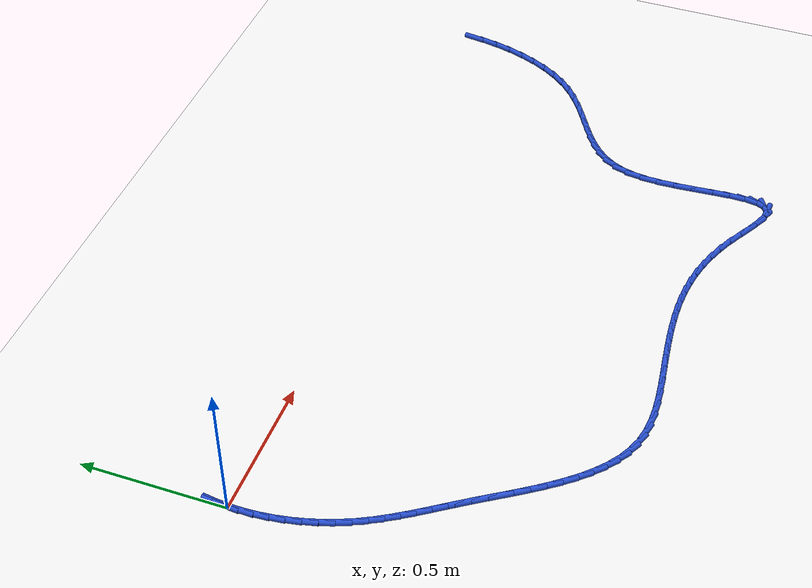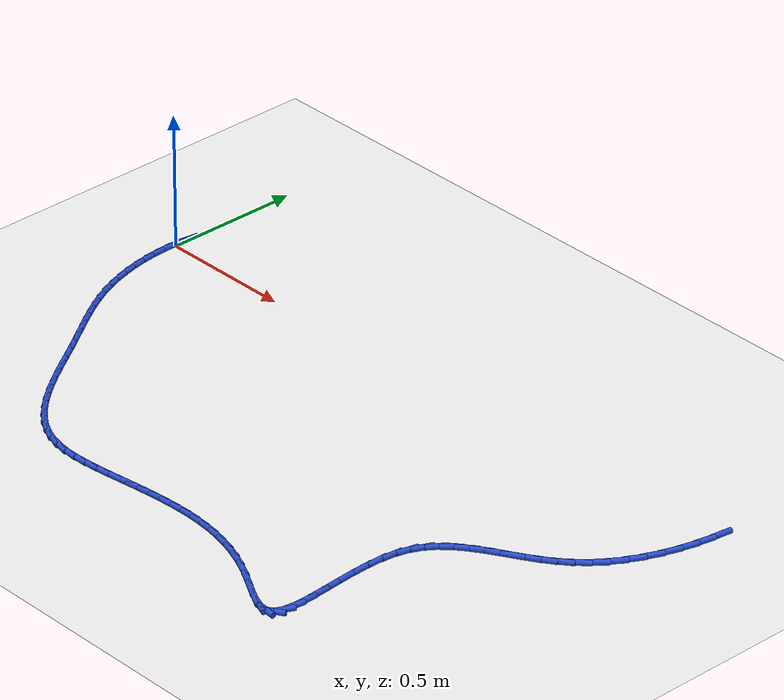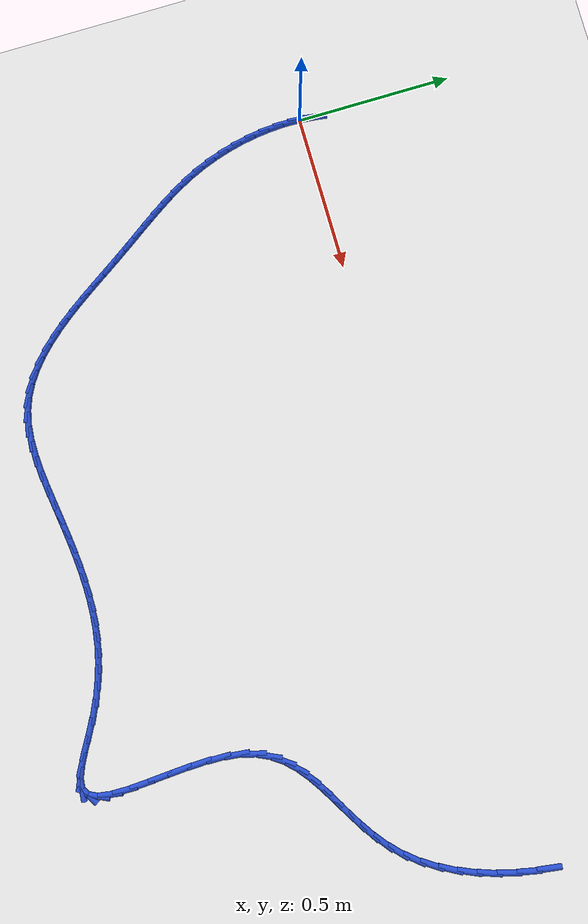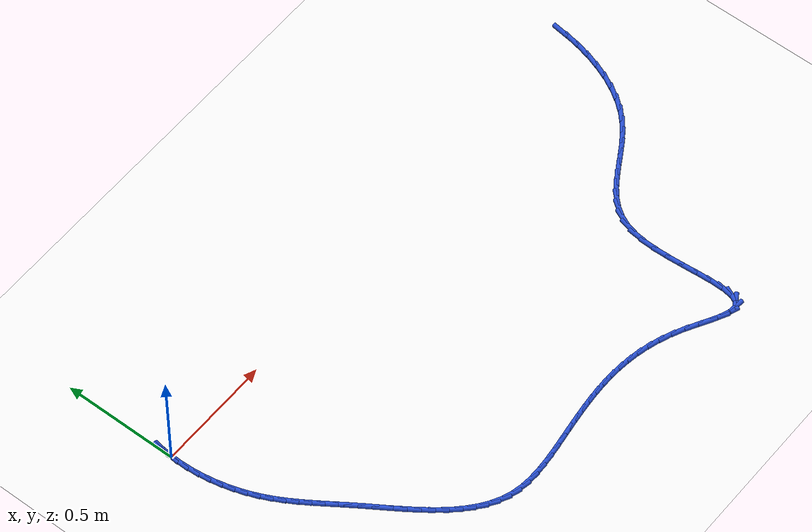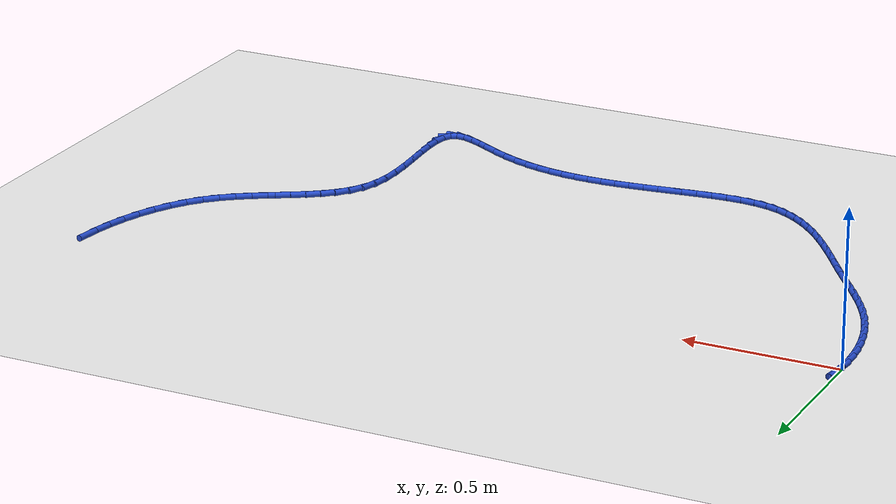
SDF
<sdf version="1.6">
 <world name="default">
  <model name="ground_plane">
   <static>1</static>
   <link name="link">
    <collision name="collision">
     <geometry><plane><normal>0 0 1</normal><size>100 100</size></plane></geometry>
     <surface><friction><ode><mu>100</mu><mu2>50</mu2></ode></friction></surface>
    </collision>
    <visual name="visual">
     <cast_shadows>0</cast_shadows>
     <geometry><plane><normal>0 0 1</normal><size>100 100</size></plane></geometry>
     <material>
      <script><uri>file://media/materials/scripts/gazebo.material</uri><name>Gazebo/WhiteGlow</name></script>
     </material>
    </visual>
   </link>
  </model>
  <model name="line">
   <link name="link_0">
    <pose>1.734723475976807e-18 -6.938893903907228e-18 0.01 0 1.57 1.4833521786747628</pose>
    <collision name="collision">
     <geometry><cylinder><radius>0.01</radius><length>0.08</length></cylinder></geometry>
    </collision>
    <visual name="visual">
     <material>
      <script><name>Gazebo/Blue</name><uri>file://media/materials/scripts/gazebo.material</uri></script>
     </material>
     <geometry><cylinder><radius>0.01</radius><length>0.08</length></cylinder></geometry>
    </visual>
   </link>
   <link name="link_1">
    <pose>0.004138113100959546 0.04720224826261963 0.01 0 1.57 1.4253230461346753</pose>
    <collision name="collision">
     <geometry><cylinder><radius>0.01</radius><length>0.08</length></cylinder></geometry>
    </collision>
    <visual name="visual">
     <material>
      <script><name>Gazebo/Blue</name><uri>file://media/materials/scripts/gazebo.material</uri></script>
     </material>
     <geometry><cylinder><radius>0.01</radius><length>0.08</length></cylinder></geometry>
    </visual>
   </link>
   <link name="link_88">
    <pose>2.495821239260874 0.07475999893013513 0.01 0 1.57 1.4299672112458717</pose>
    <collision name="collision">
     <geometry><cylinder><radius>0.01</radius><length>0.08</length></cylinder></geometry>
    </collision>
    <visual name="visual">
     <material>
      <script><name>Gazebo/Blue</name><uri>file://media/materials/scripts/gazebo.material</uri></script>
     </material>
     <geometry><cylinder><radius>0.01</radius><length>0.08</length></cylinder></geometry>
    </visual>
   </link>
   <link name="link_89">
    <pose>2.4870882066946534 0.013158941213818366 0.01 0 1.57 1.3635583925396904</pose>
    <collision name="collision">
     <geometry><cylinder><radius>0.01</radius><length>0.08</length></cylinder></geometry>
    </collision>
    <visual name="visual">
     <material>
      <script><name>Gazebo/Blue</name><uri>file://media/materials/scripts/gazebo.material</uri></script>
     </material>
     <geometry><cylinder><radius>0.01</radius><length>0.08</length></cylinder></geometry>
    </visual>
   </link>
   <link name="link_90">
    <pose>2.4742563139695792 -0.04787074018446901 0.01 0 1.57 1.2955035792887912</pose>
    <collision name="collision">
     <geometry><cylinder><radius>0.01</radius><length>0.08</length></cylinder></geometry>
    </collision>
    <visual name="visual">
     <material>
      <script><name>Gazebo/Blue</name><uri>file://media/materials/scripts/gazebo.material</uri></script>
     </material>
     <geometry><cylinder><radius>0.01</radius><length>0.08</length></cylinder></geometry>
    </visual>
   </link>
   <link name="link_91">
    <pose>2.457389563642091 -0.10758351379263104 0.01 0 1.57 1.2239593561271442</pose>
    <collision name="collision">
     <geometry><cylinder><radius>0.01</radius><length>0.08</length></cylinder></geometry>
    </collision>
    <visual name="visual">
     <material>
      <script><name>Gazebo/Blue</name><uri>file://media/materials/scripts/gazebo.material</uri></script>
     </material>
     <geometry><cylinder><radius>0.01</radius><length>0.08</length></cylinder></geometry>
    </visual>
   </link>
   <link name="link_92">
    <pose>2.4365519582686326 -0.1652338481385704 0.01 0 1.57 1.1469512393487458</pose>
    <collision name="collision">
     <geometry><cylinder><radius>0.01</radius><length>0.08</length></cylinder></geometry>
    </collision>
    <visual name="visual">
     <material>
      <script><name>Gazebo/Blue</name><uri>file://media/materials/scripts/gazebo.material</uri></script>
     </material>
     <geometry><cylinder><radius>0.01</radius><length>0.08</length></cylinder></geometry>
    </visual>
   </link>
   <link name="link_93">
    <pose>2.411807500405645 -0.22007621175018988 0.01 0 1.57 1.0623059082910338</pose>
    <collision name="collision">
     <geometry><cylinder><radius>0.01</radius><length>0.08</length></cylinder></geometry>
    </collision>
    <visual name="visual">
     <material>
      <script><name>Gazebo/Blue</name><uri>file://media/materials/scripts/gazebo.material</uri></script>
     </material>
     <geometry><cylinder><radius>0.01</radius><length>0.08</length></cylinder></geometry>
    </visual>
   </link>
   <link name="link_94">
    <pose>2.383220192609569 -0.271365073155393 0.01 0 1.57 0.9676330819131115</pose>
    <collision name="collision">
     <geometry><cylinder><radius>0.01</radius><length>0.08</length></cylinder></geometry>
    </collision>
    <visual name="visual">
     <material>
      <script><name>Gazebo/Blue</name><uri>file://media/materials/scripts/gazebo.material</uri></script>
     </material>
     <geometry><cylinder><radius>0.01</radius><length>0.08</length></cylinder></geometry>
    </visual>
   </link>
   <link name="link_95">
    <pose>2.350854037436848 -0.31835490088208074 0.01 0 1.57 0.860414689295662</pose>
    <collision name="collision">
     <geometry><cylinder><radius>0.01</radius><length>0.08</length></cylinder></geometry>
    </collision>
    <visual name="visual">
     <material>
      <script><name>Gazebo/Blue</name><uri>file://media/materials/scripts/gazebo.material</uri></script>
     </material>
     <geometry><cylinder><radius>0.01</radius><length>0.08</length></cylinder></geometry>
    </visual>
   </link>
   <link name="link_96">
    <pose>2.314773037792205 -0.36030016417041155 0.01 0 1.57 0.744965603380325</pose>
    <collision name="collision">
     <geometry><cylinder><radius>0.01</radius><length>0.08</length></cylinder></geometry>
    </collision>
    <visual name="visual">
     <material>
      <script><name>Gazebo/Blue</name><uri>file://media/materials/scripts/gazebo.material</uri></script>
     </material>
     <geometry><cylinder><radius>0.01</radius><length>0.08</length></cylinder></geometry>
    </visual>
   </link>
   <link name="link_97">
    <pose>2.2752053171679005 -0.3967909670873308 0.01 0 1.57 0.6476040961380963</pose>
    <collision name="collision">
     <geometry><cylinder><radius>0.01</radius><length>0.08</length></cylinder></geometry>
    </collision>
    <visual name="visual">
     <material>
      <script><name>Gazebo/Blue</name><uri>file://media/materials/scripts/gazebo.material</uri></script>
     </material>
     <geometry><cylinder><radius>0.01</radius><length>0.08</length></cylinder></geometry>
    </visual>
   </link>
   <link name="link_98">
    <pose>2.233010342654311 -0.42870854299915423 0.01 0 1.57 0.5773192533011722</pose>
    <collision name="collision">
     <geometry><cylinder><radius>0.01</radius><length>0.08</length></cylinder></geometry>
    </collision>
    <visual name="visual">
     <material>
      <script><name>Gazebo/Blue</name><uri>file://media/materials/scripts/gazebo.material</uri></script>
     </material>
     <geometry><cylinder><radius>0.01</radius><length>0.08</length></cylinder></geometry>
    </visual>
   </link>
   <link name="link_99">
    <pose>2.1891993714259845 -0.45724454360163796 0.01 0 1.57 0.5353824694238893</pose>
    <collision name="collision">
     <geometry><cylinder><radius>0.01</radius><length>0.08</length></cylinder></geometry>
    </collision>
    <visual name="visual">
     <material>
      <script><name>Gazebo/Blue</name><uri>file://media/materials/scripts/gazebo.material</uri></script>
     </material>
     <geometry><cylinder><radius>0.01</radius><length>0.08</length></cylinder></geometry>
    </visual>
   </link>
   <link name="link_100">
    <pose>2.1447836606574744 -0.48359062059053615 0.01 0 1.57 0.522560056136733</pose>
    <collision name="collision">
     <geometry><cylinder><radius>0.01</radius><length>0.08</length></cylinder></geometry>
    </collision>
    <visual name="visual">
     <material>
      <script><name>Gazebo/Blue</name><uri>file://media/materials/scripts/gazebo.material</uri></script>
     </material>
     <geometry><cylinder><radius>0.01</radius><length>0.08</length></cylinder></geometry>
    </visual>
   </link>
   <link name="link_101">
    <pose>2.100774467523328 -0.5089384256616047 0.01 0 1.57 0.5401835358497639</pose>
    <collision name="collision">
     <geometry><cylinder><radius>0.01</radius><length>0.08</length></cylinder></geometry>
    </collision>
    <visual name="visual">
     <material>
      <script><name>Gazebo/Blue</name><uri>file://media/materials/scripts/gazebo.material</uri></script>
     </material>
     <geometry><cylinder><radius>0.01</radius><length>0.08</length></cylinder></geometry>
    </visual>
   </link>
   <link name="link_102">
    <pose>2.058183049198096 -0.5344796105105993 0.01 0 1.57 0.5906060010589071</pose>
    <collision name="collision">
     <geometry><cylinder><radius>0.01</radius><length>0.08</length></cylinder></geometry>
    </collision>
    <visual name="visual">
     <material>
      <script><name>Gazebo/Blue</name><uri>file://media/materials/scripts/gazebo.material</uri></script>
     </material>
     <geometry><cylinder><radius>0.01</radius><length>0.08</length></cylinder></geometry>
    </visual>
   </link>
   <link name="link_103">
    <pose>2.0180206628563284 -0.5614058268332753 0.01 0 1.57 0.6768167445593142</pose>
    <collision name="collision">
     <geometry><cylinder><radius>0.01</radius><length>0.08</length></cylinder></geometry>
    </collision>
    <visual name="visual">
     <material>
      <script><name>Gazebo/Blue</name><uri>file://media/materials/scripts/gazebo.material</uri></script>
     </material>
     <geometry><cylinder><radius>0.01</radius><length>0.08</length></cylinder></geometry>
    </visual>
   </link>
   <link name="link_104">
    <pose>1.9812985656725728 -0.5909087263253883 0.01 0 1.57 0.8006648479722944</pose>
    <collision name="collision">
     <geometry><cylinder><radius>0.01</radius><length>0.08</length></cylinder></geometry>
    </collision>
    <visual name="visual">
     <material>
      <script><name>Gazebo/Blue</name><uri>file://media/materials/scripts/gazebo.material</uri></script>
     </material>
     <geometry><cylinder><radius>0.01</radius><length>0.08</length></cylinder></geometry>
    </visual>
   </link>
   <link name="link_105">
    <pose>1.9490280148213814 -0.6241799606826927 0.01 0 1.57 0.9592651800630944</pose>
    <collision name="collision">
     <geometry><cylinder><radius>0.01</radius><length>0.08</length></cylinder></geometry>
    </collision>
    <visual name="visual">
     <material>
      <script><name>Gazebo/Blue</name><uri>file://media/materials/scripts/gazebo.material</uri></script>
     </material>
     <geometry><cylinder><radius>0.01</radius><length>0.08</length></cylinder></geometry>
    </visual>
   </link>
   <link name="link_106">
    <pose>1.922220267477304 -0.6624111816009446 0.01 0 1.57 1.1411915288482528</pose>
    <collision name="collision">
     <geometry><cylinder><radius>0.01</radius><length>0.08</length></cylinder></geometry>
    </collision>
    <visual name="visual">
     <material>
      <script><name>Gazebo/Blue</name><uri>file://media/materials/scripts/gazebo.material</uri></script>
     </material>
     <geometry><cylinder><radius>0.01</radius><length>0.08</length></cylinder></geometry>
    </visual>
   </link>
   <link name="link_107">
    <pose>1.9018865808148897 -0.7067940407758996 0.01 0 1.57 1.3251898674702867</pose>
    <collision name="collision">
     <geometry><cylinder><radius>0.01</radius><length>0.08</length></cylinder></geometry>
    </collision>
    <visual name="visual">
     <material>
      <script><name>Gazebo/Blue</name><uri>file://media/materials/scripts/gazebo.material</uri></script>
     </material>
     <geometry><cylinder><radius>0.01</radius><length>0.08</length></cylinder></geometry>
    </visual>
   </link>
   <link name="link_108">
    <pose>1.8889490783106362 -0.7584063206875965 0.01 0 1.57 1.4667762088494005</pose>
    <collision name="collision">
     <geometry><cylinder><radius>0.01</radius><length>0.08</length></cylinder></geometry>
    </collision>
    <visual name="visual">
     <material>
      <script><name>Gazebo/Blue</name><uri>file://media/materials/scripts/gazebo.material</uri></script>
     </material>
     <geometry><cylinder><radius>0.01</radius><length>0.08</length></cylinder></geometry>
    </visual>
   </link>
   <link name="link_109">
    <pose>1.8828862089376857 -0.8164814947944673 0.01 0 1.57 1.5566634035106777</pose>
    <collision name="collision">
     <geometry><cylinder><radius>0.01</radius><length>0.08</length></cylinder></geometry>
    </collision>
    <visual name="visual">
     <material>
      <script><name>Gazebo/Blue</name><uri>file://media/materials/scripts/gazebo.material</uri></script>
     </material>
     <geometry><cylinder><radius>0.01</radius><length>0.08</length></cylinder></geometry>
    </visual>
   </link>
   <link name="link_110">
    <pose>1.8820060038661153 -0.8787578157775285 0.01 0 1.57 -1.5306642677155144</pose>
    <collision name="collision">
     <geometry><cylinder><radius>0.01</radius><length>0.08</length></cylinder></geometry>
    </collision>
    <visual name="visual">
     <material>
      <script><name>Gazebo/Blue</name><uri>file://media/materials/scripts/gazebo.material</uri></script>
     </material>
     <geometry><cylinder><radius>0.01</radius><length>0.08</length></cylinder></geometry>
    </visual>
   </link>
   <link name="link_111">
    <pose>1.8845827673173952 -0.9429304497941744 0.01 0 1.57 -1.5033367636868913</pose>
    <collision name="collision">
     <geometry><cylinder><radius>0.01</radius><length>0.08</length></cylinder></geometry>
    </collision>
    <visual name="visual">
     <material>
      <script><name>Gazebo/Blue</name><uri>file://media/materials/scripts/gazebo.material</uri></script>
     </material>
     <geometry><cylinder><radius>0.01</radius><length>0.08</length></cylinder></geometry>
    </visual>
   </link>
   <link name="link_112">
    <pose>1.8888908035129959 -1.0066945630018034 0.01 0 1.57 -1.500257378357856</pose>
    <collision name="collision">
     <geometry><cylinder><radius>0.01</radius><length>0.08</length></cylinder></geometry>
    </collision>
    <visual name="visual">
     <material>
      <script><name>Gazebo/Blue</name><uri>file://media/materials/scripts/gazebo.material</uri></script>
     </material>
     <geometry><cylinder><radius>0.01</radius><length>0.08</length></cylinder></geometry>
    </visual>
   </link>
   <link name="link_113">
    <pose>1.893204416674387 -1.067745321557812 0.01 0 1.57 -1.5245438584699584</pose>
    <collision name="collision">
     <geometry><cylinder><radius>0.01</radius><length>0.08</length></cylinder></geometry>
    </collision>
    <visual name="visual">
     <material>
      <script><name>Gazebo/Blue</name><uri>file://media/materials/scripts/gazebo.material</uri></script>
     </material>
     <geometry><cylinder><radius>0.01</radius><length>0.08</length></cylinder></geometry>
    </visual>
   </link>
   <link name="link_114">
    <pose>1.8957979110230399 -1.1237778916195977 0.01 0 1.57 1.5533001004804743</pose>
    <collision name="collision">
     <geometry><cylinder><radius>0.01</radius><length>0.08</length></cylinder></geometry>
    </collision>
    <visual name="visual">
     <material>
      <script><name>Gazebo/Blue</name><uri>file://media/materials/scripts/gazebo.material</uri></script>
     </material>
     <geometry><cylinder><radius>0.01</radius><length>0.08</length></cylinder></geometry>
    </visual>
   </link>
   <link name="link_115">
    <pose>1.894945590780425 -1.1724874393445588 0.01 0 1.57 1.4178654907097394</pose>
    <collision name="collision">
     <geometry><cylinder><radius>0.01</radius><length>0.08</length></cylinder></geometry>
    </collision>
    <visual name="visual">
     <material>
      <script><name>Gazebo/Blue</name><uri>file://media/materials/scripts/gazebo.material</uri></script>
     </material>
     <geometry><cylinder><radius>0.01</radius><length>0.08</length></cylinder></geometry>
    </visual>
   </link>
   <link name="link_116">
    <pose>1.8889217601680124 -1.21156913089009 0.01 0 1.57 1.1265890930205877</pose>
    <collision name="collision">
     <geometry><cylinder><radius>0.01</radius><length>0.08</length></cylinder></geometry>
    </collision>
    <visual name="visual">
     <material>
      <script><name>Gazebo/Blue</name><uri>file://media/materials/scripts/gazebo.material</uri></script>
     </material>
     <geometry><cylinder><radius>0.01</radius><length>0.08</length></cylinder></geometry>
    </visual>
   </link>
   <link name="link_117">
    <pose>1.8760007234072726 -1.2387181324135894 0.01 0 1.57 0.5399113018068107</pose>
    <collision name="collision">
     <geometry><cylinder><radius>0.01</radius><length>0.08</length></cylinder></geometry>
    </collision>
    <visual name="visual">
     <material>
      <script><name>Gazebo/Blue</name><uri>file://media/materials/scripts/gazebo.material</uri></script>
     </material>
     <geometry><cylinder><radius>0.01</radius><length>0.08</length></cylinder></geometry>
    </visual>
   </link>
   <link name="link_118">
    <pose>1.8544567847196765 -1.2516296100724542 0.01 0 1.57 -0.09654531863326281</pose>
    <collision name="collision">
     <geometry><cylinder><radius>0.01</radius><length>0.08</length></cylinder></geometry>
    </collision>
    <visual name="visual">
     <material>
      <script><name>Gazebo/Blue</name><uri>file://media/materials/scripts/gazebo.material</uri></script>
     </material>
     <geometry><cylinder><radius>0.01</radius><length>0.08</length></cylinder></geometry>
    </visual>
   </link>
   <link name="link_119">
    <pose>1.8229115577545232 -1.2485745681664422 0.01 0 1.57 -0.3848978425719063</pose>
    <collision name="collision">
     <geometry><cylinder><radius>0.01</radius><length>0.08</length></cylinder></geometry>
    </collision>
    <visual name="visual">
     <material>
      <script><name>Gazebo/Blue</name><uri>file://media/materials/scripts/gazebo.material</uri></script>
     </material>
     <geometry><cylinder><radius>0.01</radius><length>0.08</length></cylinder></geometry>
    </visual>
   </link>
   <link name="link_120">
    <pose>1.7826696809703224 -1.232272459261457 0.01 0 1.57 -0.4902870545709526</pose>
    <collision name="collision">
     <geometry><cylinder><radius>0.01</radius><length>0.08</length></cylinder></geometry>
    </collision>
    <visual name="visual">
     <material>
      <script><name>Gazebo/Blue</name><uri>file://media/materials/scripts/gazebo.material</uri></script>
     </material>
     <geometry><cylinder><radius>0.01</radius><length>0.08</length></cylinder></geometry>
    </visual>
   </link>
   <link name="link_121">
    <pose>1.73628535253424 -1.2075145027219547 0.01 0 1.57 -0.5170199239435117</pose>
    <collision name="collision">
     <geometry><cylinder><radius>0.01</radius><length>0.08</length></cylinder></geometry>
    </collision>
    <visual name="visual">
     <material>
      <script><name>Gazebo/Blue</name><uri>file://media/materials/scripts/gazebo.material</uri></script>
     </material>
     <geometry><cylinder><radius>0.01</radius><length>0.08</length></cylinder></geometry>
    </visual>
   </link>
   <link name="link_122">
    <pose>1.6863197455360506 -1.1791034823162247 0.01 0 1.57 -0.4911693146768078</pose>
    <collision name="collision">
     <geometry><cylinder><radius>0.01</radius><length>0.08</length></cylinder></geometry>
    </collision>
    <visual name="visual">
     <material>
      <script><name>Gazebo/Blue</name><uri>file://media/materials/scripts/gazebo.material</uri></script>
     </material>
     <geometry><cylinder><radius>0.01</radius><length>0.08</length></cylinder></geometry>
    </visual>
   </link>
   <link name="link_123">
    <pose>1.6353264422524296 -1.1518276196169273 0.01 0 1.57 -0.4286232499107913</pose>
    <collision name="collision">
     <geometry><cylinder><radius>0.01</radius><length>0.08</length></cylinder></geometry>
    </collision>
    <visual name="visual">
     <material>
      <script><name>Gazebo/Blue</name><uri>file://media/materials/scripts/gazebo.material</uri></script>
     </material>
     <geometry><cylinder><radius>0.01</radius><length>0.08</length></cylinder></geometry>
    </visual>
   </link>
   <link name="link_124">
    <pose>1.585002379552402 -1.1288317499286482 0.01 0 1.57 -0.3606228047868257</pose>
    <collision name="collision">
     <geometry><cylinder><radius>0.01</radius><length>0.08</length></cylinder></geometry>
    </collision>
    <visual name="visual">
     <material>
      <script><name>Gazebo/Blue</name><uri>file://media/materials/scripts/gazebo.material</uri></script>
     </material>
     <geometry><cylinder><radius>0.01</radius><length>0.08</length></cylinder></geometry>
    </visual>
   </link>
   <link name="link_125">
    <pose>1.5354130281340355 -1.1101309081995663 0.01 0 1.57 -0.2923974377686825</pose>
    <collision name="collision">
     <geometry><cylinder><radius>0.01</radius><length>0.08</length></cylinder></geometry>
    </collision>
    <visual name="visual">
     <material>
      <script><name>Gazebo/Blue</name><uri>file://media/materials/scripts/gazebo.material</uri></script>
     </material>
     <geometry><cylinder><radius>0.01</radius><length>0.08</length></cylinder></geometry>
    </visual>
   </link>
   <link name="link_126">
    <pose>1.486440839708487 -1.0953890262409018 0.01 0 1.57 -0.2254863458691191</pose>
    <collision name="collision">
     <geometry><cylinder><radius>0.01</radius><length>0.08</length></cylinder></geometry>
    </collision>
    <visual name="visual">
     <material>
      <script><name>Gazebo/Blue</name><uri>file://media/materials/scripts/gazebo.material</uri></script>
     </material>
     <geometry><cylinder><radius>0.01</radius><length>0.08</length></cylinder></geometry>
    </visual>
   </link>
   <link name="link_127">
    <pose>1.4379682659869157 -1.0842700358638766 0.01 0 1.57 -0.16144559988067128</pose>
    <collision name="collision">
     <geometry><cylinder><radius>0.01</radius><length>0.08</length></cylinder></geometry>
    </collision>
    <visual name="visual">
     <material>
      <script><name>Gazebo/Blue</name><uri>file://media/materials/scripts/gazebo.material</uri></script>
     </material>
     <geometry><cylinder><radius>0.01</radius><length>0.08</length></cylinder></geometry>
    </visual>
   </link>
   <link name="link_128">
    <pose>1.3898777586804774 -1.0764378688797105 0.01 0 1.57 -0.10171386625293406</pose>
    <collision name="collision">
     <geometry><cylinder><radius>0.01</radius><length>0.08</length></cylinder></geometry>
    </collision>
    <visual name="visual">
     <material>
      <script><name>Gazebo/Blue</name><uri>file://media/materials/scripts/gazebo.material</uri></script>
     </material>
     <geometry><cylinder><radius>0.01</radius><length>0.08</length></cylinder></geometry>
    </visual>
   </link>
   <link name="link_129">
    <pose>1.3420517695003291 -1.0715564570996243 0.01 0 1.57 -0.04750557736145469</pose>
    <collision name="collision">
     <geometry><cylinder><radius>0.01</radius><length>0.08</length></cylinder></geometry>
    </collision>
    <visual name="visual">
     <material>
      <script><name>Gazebo/Blue</name><uri>file://media/materials/scripts/gazebo.material</uri></script>
     </material>
     <geometry><cylinder><radius>0.01</radius><length>0.08</length></cylinder></geometry>
    </visual>
   </link>
   <link name="link_130">
    <pose>1.2943727501576294 -1.0692897323348394 0.01 0 1.57 0.0002496151497739468</pose>
    <collision name="collision">
     <geometry><cylinder><radius>0.01</radius><length>0.08</length></cylinder></geometry>
    </collision>
    <visual name="visual">
     <material>
      <script><name>Gazebo/Blue</name><uri>file://media/materials/scripts/gazebo.material</uri></script>
     </material>
     <geometry><cylinder><radius>0.01</radius><length>0.08</length></cylinder></geometry>
    </visual>
   </link>
   <link name="link_131">
    <pose>1.2467231523635336 -1.0693016263965764 0.01 0 1.57 0.040918451985925544</pose>
    <collision name="collision">
     <geometry><cylinder><radius>0.01</radius><length>0.08</length></cylinder></geometry>
    </collision>
    <visual name="visual">
     <material>
      <script><name>Gazebo/Blue</name><uri>file://media/materials/scripts/gazebo.material</uri></script>
     </material>
     <geometry><cylinder><radius>0.01</radius><length>0.08</length></cylinder></geometry>
    </visual>
   </link>
   <link name="link_132">
    <pose>1.198985427829201 -1.071256071096056 0.01 0 1.57 0.07413743589017092</pose>
    <collision name="collision">
     <geometry><cylinder><radius>0.01</radius><length>0.08</length></cylinder></geometry>
    </collision>
    <visual name="visual">
     <material>
      <script><name>Gazebo/Blue</name><uri>file://media/materials/scripts/gazebo.material</uri></script>
     </material>
     <geometry><cylinder><radius>0.01</radius><length>0.08</length></cylinder></geometry>
    </visual>
   </link>
   <link name="link_133">
    <pose>1.1510420282657878 -1.0748169982444993 0.01 0 1.57 0.0997646349281113</pose>
    <collision name="collision">
     <geometry><cylinder><radius>0.01</radius><length>0.08</length></cylinder></geometry>
    </collision>
    <visual name="visual">
     <material>
      <script><name>Gazebo/Blue</name><uri>file://media/materials/scripts/gazebo.material</uri></script>
     </material>
     <geometry><cylinder><radius>0.01</radius><length>0.08</length></cylinder></geometry>
    </visual>
   </link>
   <link name="link_134">
    <pose>1.102775405384452 -1.079648339653127 0.01 0 1.57 0.11782566792402432</pose>
    <collision name="collision">
     <geometry><cylinder><radius>0.01</radius><length>0.08</length></cylinder></geometry>
    </collision>
    <visual name="visual">
     <material>
      <script><name>Gazebo/Blue</name><uri>file://media/materials/scripts/gazebo.material</uri></script>
     </material>
     <geometry><cylinder><radius>0.01</radius><length>0.08</length></cylinder></geometry>
    </visual>
   </link>
   <link name="link_135">
    <pose>1.0540680108963498 -1.0854140271331592 0.01 0 1.57 0.1284649612448785</pose>
    <collision name="collision">
     <geometry><cylinder><radius>0.01</radius><length>0.08</length></cylinder></geometry>
    </collision>
    <visual name="visual">
     <material>
      <script><name>Gazebo/Blue</name><uri>file://media/materials/scripts/gazebo.material</uri></script>
     </material>
     <geometry><cylinder><radius>0.01</radius><length>0.08</length></cylinder></geometry>
    </visual>
   </link>
   <link name="link_136">
    <pose>1.004802296512638 -1.0917779924958178 0.01 0 1.57 0.13180124155252315</pose>
    <collision name="collision">
     <geometry><cylinder><radius>0.01</radius><length>0.08</length></cylinder></geometry>
    </collision>
    <visual name="visual">
     <material>
      <script><name>Gazebo/Blue</name><uri>file://media/materials/scripts/gazebo.material</uri></script>
     </material>
     <geometry><cylinder><radius>0.01</radius><length>0.08</length></cylinder></geometry>
    </visual>
   </link>
   <link name="link_137">
    <pose>0.954866906038727 -1.0983979162415713 0.01 0 1.57 0.12360386644532671</pose>
    <collision name="collision">
     <geometry><cylinder><radius>0.01</radius><length>0.08</length></cylinder></geometry>
    </collision>
    <visual name="visual">
     <material>
      <script><name>Gazebo/Blue</name><uri>file://media/materials/scripts/gazebo.material</uri></script>
     </material>
     <geometry><cylinder><radius>0.01</radius><length>0.08</length></cylinder></geometry>
    </visual>
   </link>
   <link name="link_138">
    <pose>0.904413319689962 -1.104666128892571 0.01 0 1.57 0.09778638870078506</pose>
    <collision name="collision">
     <geometry><cylinder><radius>0.01</radius><length>0.08</length></cylinder></geometry>
    </collision>
    <visual name="visual">
     <material>
      <script><name>Gazebo/Blue</name><uri>file://media/materials/scripts/gazebo.material</uri></script>
     </material>
     <geometry><cylinder><radius>0.01</radius><length>0.08</length></cylinder></geometry>
    </visual>
   </link>
   <link name="link_139">
    <pose>0.8539478288487486 -1.1096167566585995 0.01 0 1.57 0.05284430850764454</pose>
    <collision name="collision">
     <geometry><cylinder><radius>0.01</radius><length>0.08</length></cylinder></geometry>
    </collision>
    <visual name="visual">
     <material>
      <script><name>Gazebo/Blue</name><uri>file://media/materials/scripts/gazebo.material</uri></script>
     </material>
     <geometry><cylinder><radius>0.01</radius><length>0.08</length></cylinder></geometry>
    </visual>
   </link>
   <link name="link_140">
    <pose>0.8040018326744004 -1.1122585778607657 0.01 0 1.57 -0.013460801885786704</pose>
    <collision name="collision">
     <geometry><cylinder><radius>0.01</radius><length>0.08</length></cylinder></geometry>
    </collision>
    <visual name="visual">
     <material>
      <script><name>Gazebo/Blue</name><uri>file://media/materials/scripts/gazebo.material</uri></script>
     </material>
     <geometry><cylinder><radius>0.01</radius><length>0.08</length></cylinder></geometry>
    </visual>
   </link>
   <link name="link_141">
    <pose>0.7551067303262327 -1.111600370820181 0.01 0 1.57 -0.1042322324185465</pose>
    <collision name="collision">
     <geometry><cylinder><radius>0.01</radius><length>0.08</length></cylinder></geometry>
    </collision>
    <visual name="visual">
     <material>
      <script><name>Gazebo/Blue</name><uri>file://media/materials/scripts/gazebo.material</uri></script>
     </material>
     <geometry><cylinder><radius>0.01</radius><length>0.08</length></cylinder></geometry>
    </visual>
   </link>
   <link name="link_142">
    <pose>0.7077939209635588 -1.1066509138579543 0.01 0 1.57 -0.22262231547972017</pose>
    <collision name="collision">
     <geometry><cylinder><radius>0.01</radius><length>0.08</length></cylinder></geometry>
    </collision>
    <visual name="visual">
     <material>
      <script><name>Gazebo/Blue</name><uri>file://media/materials/scripts/gazebo.material</uri></script>
     </material>
     <geometry><cylinder><radius>0.01</radius><length>0.08</length></cylinder></geometry>
    </visual>
   </link>
   <link name="link_143">
    <pose>0.6625948031227193 -1.096418986632423 0.01 0 1.57 -0.3631354193567092</pose>
    <collision name="collision">
     <geometry><cylinder><radius>0.01</radius><length>0.08</length></cylinder></geometry>
    </collision>
    <visual name="visual">
     <material>
      <script><name>Gazebo/Blue</name><uri>file://media/materials/scripts/gazebo.material</uri></script>
     </material>
     <geometry><cylinder><radius>0.01</radius><length>0.08</length></cylinder></geometry>
    </visual>
   </link>
   <link name="link_144">
    <pose>0.6199079231789539 -1.0801985384616244 0.01 0 1.57 -0.49665701583533584</pose>
    <collision name="collision">
     <geometry><cylinder><radius>0.01</radius><length>0.08</length></cylinder></geometry>
    </collision>
    <visual name="visual">
     <material>
      <script><name>Gazebo/Blue</name><uri>file://media/materials/scripts/gazebo.material</uri></script>
     </material>
     <geometry><cylinder><radius>0.01</radius><length>0.08</length></cylinder></geometry>
    </visual>
   </link>
   <link name="link_145">
    <pose>0.5796268667706445 -1.0583674263719784 0.01 0 1.57 -0.613105482292198</pose>
    <collision name="collision">
     <geometry><cylinder><radius>0.01</radius><length>0.08</length></cylinder></geometry>
    </collision>
    <visual name="visual">
     <material>
      <script><name>Gazebo/Blue</name><uri>file://media/materials/scripts/gazebo.material</uri></script>
     </material>
     <geometry><cylinder><radius>0.01</radius><length>0.08</length></cylinder></geometry>
    </visual>
   </link>
   <link name="link_146">
    <pose>0.5415252653848629 -1.0315609912292774 0.01 0 1.57 -0.7112036371443632</pose>
    <collision name="collision">
     <geometry><cylinder><radius>0.01</radius><length>0.08</length></cylinder></geometry>
    </collision>
    <visual name="visual">
     <material>
      <script><name>Gazebo/Blue</name><uri>file://media/materials/scripts/gazebo.material</uri></script>
     </material>
     <geometry><cylinder><radius>0.01</radius><length>0.08</length></cylinder></geometry>
    </visual>
   </link>
   <link name="link_147">
    <pose>0.5053767505086809 -1.000414573899311 0.01 0 1.57 -0.7915947648567025</pose>
    <collision name="collision">
     <geometry><cylinder><radius>0.01</radius><length>0.08</length></cylinder></geometry>
    </collision>
    <visual name="visual">
     <material>
      <script><name>Gazebo/Blue</name><uri>file://media/materials/scripts/gazebo.material</uri></script>
     </material>
     <geometry><cylinder><radius>0.01</radius><length>0.08</length></cylinder></geometry>
    </visual>
   </link>
   <link name="link_148">
    <pose>0.47095495362917195 -0.9655635152478724 0.01 0 1.57 -0.8558458208840791</pose>
    <collision name="collision">
     <geometry><cylinder><radius>0.01</radius><length>0.08</length></cylinder></geometry>
    </collision>
    <visual name="visual">
     <material>
      <script><name>Gazebo/Blue</name><uri>file://media/materials/scripts/gazebo.material</uri></script>
     </material>
     <geometry><cylinder><radius>0.01</radius><length>0.08</length></cylinder></geometry>
    </visual>
   </link>
   <link name="link_149">
    <pose>0.4380335062334074 -0.9276431561407525 0.01 0 1.57 -0.9057393568203554</pose>
    <collision name="collision">
     <geometry><cylinder><radius>0.01</radius><length>0.08</length></cylinder></geometry>
    </collision>
    <visual name="visual">
     <material>
      <script><name>Gazebo/Blue</name><uri>file://media/materials/scripts/gazebo.material</uri></script>
     </material>
     <geometry><cylinder><radius>0.01</radius><length>0.08</length></cylinder></geometry>
    </visual>
   </link>
   <link name="link_150">
    <pose>0.4063860398084592 -0.8872888374437429 0.01 0 1.57 -0.9428823582433226</pose>
    <collision name="collision">
     <geometry><cylinder><radius>0.01</radius><length>0.08</length></cylinder></geometry>
    </collision>
    <visual name="visual">
     <material>
      <script><name>Gazebo/Blue</name><uri>file://media/materials/scripts/gazebo.material</uri></script>
     </material>
     <geometry><cylinder><radius>0.01</radius><length>0.08</length></cylinder></geometry>
    </visual>
   </link>
   <link name="link_151">
    <pose>0.3757861858413998 -0.8451359000226345 0.01 0 1.57 -0.9685291719515944</pose>
    <collision name="collision">
     <geometry><cylinder><radius>0.01</radius><length>0.08</length></cylinder></geometry>
    </collision>
    <visual name="visual">
     <material>
      <script><name>Gazebo/Blue</name><uri>file://media/materials/scripts/gazebo.material</uri></script>
     </material>
     <geometry><cylinder><radius>0.01</radius><length>0.08</length></cylinder></geometry>
    </visual>
   </link>
   <link name="link_152">
    <pose>0.3460075758193009 -0.8018196847432191 0.01 0 1.57 -0.9835156864030535</pose>
    <collision name="collision">
     <geometry><cylinder><radius>0.01</radius><length>0.08</length></cylinder></geometry>
    </collision>
    <visual name="visual">
     <material>
      <script><name>Gazebo/Blue</name><uri>file://media/materials/scripts/gazebo.material</uri></script>
     </material>
     <geometry><cylinder><radius>0.01</radius><length>0.08</length></cylinder></geometry>
    </visual>
   </link>
   <link name="link_153">
    <pose>0.3168238412292345 -0.7579755324712873 0.01 0 1.57 -0.9882364251251673</pose>
    <collision name="collision">
     <geometry><cylinder><radius>0.01</radius><length>0.08</length></cylinder></geometry>
    </collision>
    <visual name="visual">
     <material>
      <script><name>Gazebo/Blue</name><uri>file://media/materials/scripts/gazebo.material</uri></script>
     </material>
     <geometry><cylinder><radius>0.01</radius><length>0.08</length></cylinder></geometry>
    </visual>
   </link>
   <link name="link_154">
    <pose>0.2880086135582735 -0.7142387840726323 0.01 0 1.57 -0.9826266132625459</pose>
    <collision name="collision">
     <geometry><cylinder><radius>0.01</radius><length>0.08</length></cylinder></geometry>
    </collision>
    <visual name="visual">
     <material>
      <script><name>Gazebo/Blue</name><uri>file://media/materials/scripts/gazebo.material</uri></script>
     </material>
     <geometry><cylinder><radius>0.01</radius><length>0.08</length></cylinder></geometry>
    </visual>
   </link>
   <link name="link_155">
    <pose>0.2593355425702813 -0.6712447462467557 0.01 0 1.57 -0.9703036742540982</pose>
    <collision name="collision">
     <geometry><cylinder><radius>0.01</radius><length>0.08</length></cylinder></geometry>
    </collision>
    <visual name="visual">
     <material>
      <script><name>Gazebo/Blue</name><uri>file://media/materials/scripts/gazebo.material</uri></script>
     </material>
     <geometry><cylinder><radius>0.01</radius><length>0.08</length></cylinder></geometry>
    </visual>
   </link>
   <link name="link_156">
    <pose>0.23069059162346792 -0.6294187687852626 0.01 0 1.57 -0.9650820719086943</pose>
    <collision name="collision">
     <geometry><cylinder><radius>0.01</radius><length>0.08</length></cylinder></geometry>
    </collision>
    <visual name="visual">
     <material>
      <script><name>Gazebo/Blue</name><uri>file://media/materials/scripts/gazebo.material</uri></script>
     </material>
     <geometry><cylinder><radius>0.01</radius><length>0.08</length></cylinder></geometry>
    </visual>
   </link>
   <link name="link_157">
    <pose>0.20233775774544666 -0.5884795124919155 0.01 0 1.57 -0.9704301373968949</pose>
    <collision name="collision">
     <geometry><cylinder><radius>0.01</radius><length>0.08</length></cylinder></geometry>
    </collision>
    <visual name="visual">
     <material>
      <script><name>Gazebo/Blue</name><uri>file://media/materials/scripts/gazebo.material</uri></script>
     </material>
     <geometry><cylinder><radius>0.01</radius><length>0.08</length></cylinder></geometry>
    </visual>
   </link>
   <link name="link_158">
    <pose>0.17462048975730185 -0.5479971124912714 0.01 0 1.57 -0.9867747503616144</pose>
    <collision name="collision">
     <geometry><cylinder><radius>0.01</radius><length>0.08</length></cylinder></geometry>
    </collision>
    <visual name="visual">
     <material>
      <script><name>Gazebo/Blue</name><uri>file://media/materials/scripts/gazebo.material</uri></script>
     </material>
     <geometry><cylinder><radius>0.01</radius><length>0.08</length></cylinder></geometry>
    </visual>
   </link>
   <link name="link_159">
    <pose>0.14788223648011958 -0.5075417039078897 0.01 0 1.57 -1.0143230186917116</pose>
    <collision name="collision">
     <geometry><cylinder><radius>0.01</radius><length>0.08</length></cylinder></geometry>
    </collision>
    <visual name="visual">
     <material>
      <script><name>Gazebo/Blue</name><uri>file://media/materials/scripts/gazebo.material</uri></script>
     </material>
     <geometry><cylinder><radius>0.01</radius><length>0.08</length></cylinder></geometry>
    </visual>
   </link>
   <link name="link_160">
    <pose>0.12246644673498416 -0.4666834218663268 0.01 0 1.57 -1.0529813673126542</pose>
    <collision name="collision">
     <geometry><cylinder><radius>0.01</radius><length>0.08</length></cylinder></geometry>
    </collision>
    <visual name="visual">
     <material>
      <script><name>Gazebo/Blue</name><uri>file://media/materials/scripts/gazebo.material</uri></script>
     </material>
     <geometry><cylinder><radius>0.01</radius><length>0.08</length></cylinder></geometry>
    </visual>
   </link>
   <link name="link_161">
    <pose>0.09871656934298062 -0.4249924014911406 0.01 0 1.57 -1.1022493625747527</pose>
    <collision name="collision">
     <geometry><cylinder><radius>0.01</radius><length>0.08</length></cylinder></geometry>
    </collision>
    <visual name="visual">
     <material>
      <script><name>Gazebo/Blue</name><uri>file://media/materials/scripts/gazebo.material</uri></script>
     </material>
     <geometry><cylinder><radius>0.01</radius><length>0.08</length></cylinder></geometry>
    </visual>
   </link>
   <link name="link_162">
    <pose>0.07697605312519379 -0.3820387779068884 0.01 0 1.57 -1.1608395126814768</pose>
    <collision name="collision">
     <geometry><cylinder><radius>0.01</radius><length>0.08</length></cylinder></geometry>
    </collision>
    <visual name="visual">
     <material>
      <script><name>Gazebo/Blue</name><uri>file://media/materials/scripts/gazebo.material</uri></script>
     </material>
     <geometry><cylinder><radius>0.01</radius><length>0.08</length></cylinder></geometry>
    </visual>
   </link>
   <link name="link_163">
    <pose>0.057582592072695296 -0.3374130076799465 0.01 0 1.57 -1.2222322746968566</pose>
    <collision name="collision">
     <geometry><cylinder><radius>0.01</radius><length>0.08</length></cylinder></geometry>
    </collision>
    <visual name="visual">
     <material>
      <script><name>Gazebo/Blue</name><uri>file://media/materials/scripts/gazebo.material</uri></script>
     </material>
     <geometry><cylinder><radius>0.01</radius><length>0.08</length></cylinder></geometry>
    </visual>
   </link>
   <link name="link_164">
    <pose>0.04075787175209508 -0.2911151960444969 0.01 0 1.57 -1.2819452623233667</pose>
    <collision name="collision">
     <geometry><cylinder><radius>0.01</radius><length>0.08</length></cylinder></geometry>
    </collision>
    <visual name="visual">
     <material>
      <script><name>Gazebo/Blue</name><uri>file://media/materials/scripts/gazebo.material</uri></script>
     </material>
     <geometry><cylinder><radius>0.01</radius><length>0.08</length></cylinder></geometry>
    </visual>
   </link>
   <link name="link_165">
    <pose>0.026615986592427723 -0.24352537379942604 0.01 0 1.57 -1.340874287992915</pose>
    <collision name="collision">
     <geometry><cylinder><radius>0.01</radius><length>0.08</length></cylinder></geometry>
    </collision>
    <visual name="visual">
     <material>
      <script><name>Gazebo/Blue</name><uri>file://media/materials/scripts/gazebo.material</uri></script>
     </material>
     <geometry><cylinder><radius>0.01</radius><length>0.08</length></cylinder></geometry>
    </visual>
   </link>
   <link name="link_166">
    <pose>0.015266962644890868 -0.19503793798959826 0.01 0 1.57 -1.4000715720721704</pose>
    <collision name="collision">
     <geometry><cylinder><radius>0.01</radius><length>0.08</length></cylinder></geometry>
    </collision>
    <visual name="visual">
     <material>
      <script><name>Gazebo/Blue</name><uri>file://media/materials/scripts/gazebo.material</uri></script>
     </material>
     <geometry><cylinder><radius>0.01</radius><length>0.08</length></cylinder></geometry>
    </visual>
   </link>
   <link name="link_167">
    <pose>0.006820825960682071 -0.1460472856598776 0.01 0 1.57 -1.4605872359721854</pose>
    <collision name="collision">
     <geometry><cylinder><radius>0.01</radius><length>0.08</length></cylinder></geometry>
    </collision>
    <visual name="visual">
     <material>
      <script><name>Gazebo/Blue</name><uri>file://media/materials/scripts/gazebo.material</uri></script>
     </material>
     <geometry><cylinder><radius>0.01</radius><length>0.08</length></cylinder></geometry>
    </visual>
   </link>
   <link name="link_168">
    <pose>0.001387602590998854 -0.09694781385512746 0.01 0 1.57 -1.5235032075019381</pose>
    <collision name="collision">
     <geometry><cylinder><radius>0.01</radius><length>0.08</length></cylinder></geometry>
    </collision>
    <visual name="visual">
     <material>
      <script><name>Gazebo/Blue</name><uri>file://media/materials/scripts/gazebo.material</uri></script>
     </material>
     <geometry><cylinder><radius>0.01</radius><length>0.08</length></cylinder></geometry>
    </visual>
   </link>
   <link name="link_169">
    <pose>-0.0009226814129609847 -0.04813391962021389 0.01 0 1.57 1.5516296262370137</pose>
    <collision name="collision">
     <geometry><cylinder><radius>0.01</radius><length>0.08</length></cylinder></geometry>
    </collision>
    <visual name="visual">
     <material>
      <script><name>Gazebo/Blue</name><uri>file://media/materials/scripts/gazebo.material</uri></script>
     </material>
     <geometry><cylinder><radius>0.01</radius><length>0.08</length></cylinder></geometry>
    </visual>
   </link>
   <link name="link_170">
    <pose>8.673617379884035e-18 -9.020562075079397e-17 0.01 0 1.57 1.4803992118227716</pose>
    <collision name="collision">
     <geometry><cylinder><radius>0.01</radius><length>0.08</length></cylinder></geometry>
    </collision>
    <visual name="visual">
     <material>
      <script><name>Gazebo/Blue</name><uri>file://media/materials/scripts/gazebo.material</uri></script>
     </material>
     <geometry><cylinder><radius>0.01</radius><length>0.08</length></cylinder></geometry>
    </visual>
   </link>
   <link name="link_171">
    <pose>0.004265672881079412 0.047059547960649664 0.01 0 1.57 1.4803992118227711</pose>
    <collision name="collision">
     <geometry><cylinder><radius>0.01</radius><length>0.08</length></cylinder></geometry>
    </collision>
    <visual name="visual">
     <material>
      <script><name>Gazebo/Blue</name><uri>file://media/materials/scripts/gazebo.material</uri></script>
     </material>
     <geometry><cylinder><radius>0.01</radius><length>0.08</length></cylinder></geometry>
    </visual>
   </link>
  </model>
 </world>
</sdf>
